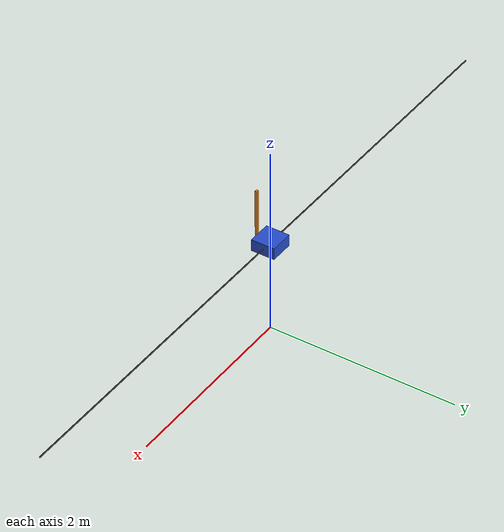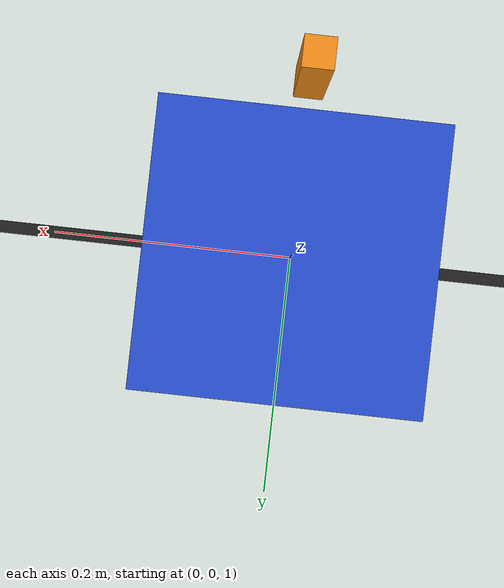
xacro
<?xml version="1.0"?>
<!-- Revolute-Revolute Manipulator -->
<robot name="invpend" xmlns:xacro="http://www.ros.org/wiki/xacro">

  <!-- Constants for robot dimensions -->
  <xacro:property name="PI" value="3.1415926535897931"/>
  <xacro:property name="mass_slider" value="10" /> <!-- arbitrary value for mass -->
  <xacro:property name="mass_cart" value="20.0" /> <!-- arbitrary value for mass -->
  <xacro:property name="mass_pole" value="2.0" /> <!-- arbitrary value for mass -->
  <xacro:property name="width" value="0.25" /> <!-- cart width -->
  <xacro:property name="height" value="0.125" /> <!-- cart height -->
  <xacro:property name="depth" value="0.25" /> <!-- cart depth -->
  <xacro:property name="length_slider" value="7" /> <!-- pole length -->
  <xacro:property name="length_pole" value="0.5" /> <!-- pole length -->
  <xacro:property name="radius" value="0.01" /> <!-- slender bar radius -->
  <xacro:property name="radius_pole" value="0.025" /> <!-- pole radius -->

  <!-- Include gazebo properties -->
  <xacro:include filename="invpend_gazebo.xacro"/>
  <!-- Import rviz colors -->
  <xacro:include filename="materials.xacro"/>

  <xacro:include filename="ros2_control.xacro"/>

  <!-- Used for fixing robot to Gazebo 'base_link' -->
  <link name="world"/>

  <joint name="fixed" type="fixed">
    <parent link="world"/>
    <child link="slidebar"/>
    <origin xyz="0 0 1"/>
  </joint>

  <!-- Slider Link -->
  <link name="slidebar">
    <visual>
      <origin xyz="0 0 0" rpy="0 0 0"/>
      <geometry>
	<box size="${length_slider} ${radius} ${radius}"/>
      </geometry>
      <material name="black"/>
    </visual>

    <inertial>
      <origin xyz="0 0 0" rpy="0 0 0"/>
      <mass value="${mass_slider}"/>
      <inertia
	  ixx="${(1/12)*mass_slider*(radius*radius+radius*radius)}" ixy="0.0" ixz="0.0"
	  iyy="${(1/12)*mass_slider*(length_slider*length_slider+radius*radius)}" iyz="0.0"
	  izz="${(1/12)*mass_slider*(length_slider*length_slider+radius*radius)}"/>
    </inertial>
  </link>

  <joint name="slider_to_cart" type="prismatic">
    <parent link="slidebar"/>
    <child link="cart"/>
    <origin xyz="0 0 0" rpy="0 0 0"/>
    <axis xyz="1 0 0"/>
    <limit effort="100.0" lower="-3.5" upper="3.5" velocity="100.0"/>
    <dynamics damping="0.0" friction="0.5"/>
    <transmission name="transmission_slider">
      <type>transmission_interface/SimpleTransmission</type>
      <joint name="slider_to_cart">
        <hardwareInterface>hardware_interface/EffortJointInterface</hardwareInterface>
      </joint>
      <actuator name="slider_motor">
        <hardwareInterface>hardware_interface/EffortJointInterface</hardwareInterface>
        <mechanicalReduction>1</mechanicalReduction>
      </actuator>
    </transmission>
  </joint>

  <!-- Cart Link -->
  <link name="cart">
    <collision>
      <origin xyz="0 0 0" rpy="0 0 0"/>
      <geometry>
	<box size="${width} ${depth} ${height}"/>
      </geometry>
    </collision>

    <visual>
      <origin xyz="0 0 0" rpy="0 0 0"/>
      <geometry>
	<box size="${width} ${depth} ${height}"/>
      </geometry>
      <material name="blue"/>
    </visual>

    <inertial>
      <origin xyz="0 0 0" rpy="0 0 0"/>
      <mass value="${mass_cart}"/>
      <inertia
	  ixx="${(1/12)*mass_cart*(depth*depth+height*height)}" ixy="0.0" ixz="0.0"
	  iyy="${(1/12)*mass_cart*(width*width+height*height)}" iyz="0.0"
	  izz="${(1/12)*mass_cart*(width*width+depth*depth)}"/>
    </inertial>
  </link>

  <joint name="cart_to_pole" type="revolute">
    <parent link="cart"/>
    <child link="pole"/>
    <origin xyz="0 ${-depth/2-radius-radius_pole/2} ${height/4}" rpy="0 0 0"/>
    <axis xyz="0 1 0"/>
    <limit effort="100.0" lower="${-PI}" upper = "${PI}" velocity="100.0"/>
    <dynamics damping="0.0" friction="0.0"/>
  </joint>

  <!-- Pole Link -->
  <link name="pole">
    <collision>
      <origin xyz="0 0 ${length_pole/2}" rpy="0 0 0"/>
      <geometry>
	      <box size="${radius_pole} ${radius_pole} ${length_pole}"/>
      </geometry>
    </collision>

    <visual>
      <origin xyz="0 0 ${length_pole/2}" rpy="0 0 0"/>
      <geometry>
	      <box size="${radius_pole} ${radius_pole} ${length_pole}"/>
      </geometry>
      <material name="orange"/>
    </visual>

    <inertial>
      <origin xyz="0 0 ${length_pole/2}" rpy="0 0 0"/>
      <mass value="${mass_pole}"/>
      <inertia
	  ixx="${(1/12)*mass_pole*(radius_pole*radius_pole+length_pole*length_pole)}" ixy="0.0" ixz="0.0"
	  iyy="${(1/12)*mass_pole*(radius_pole*radius_pole+length_pole*length_pole)}" iyz="0.0"
	  izz="${(1/12)*mass_pole*(radius_pole*radius_pole+radius_pole*radius_pole)}"/>
    </inertial>
  </link>

</robot>
